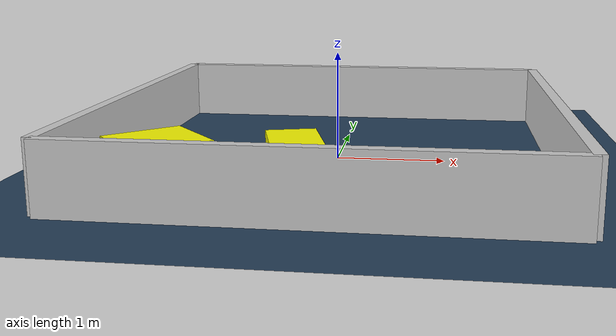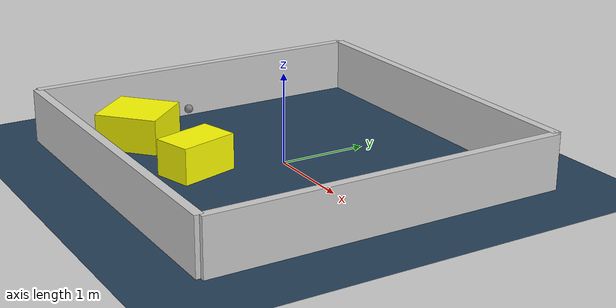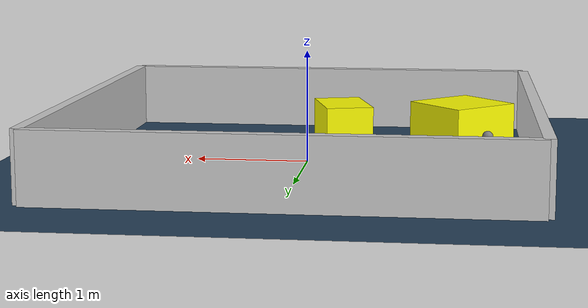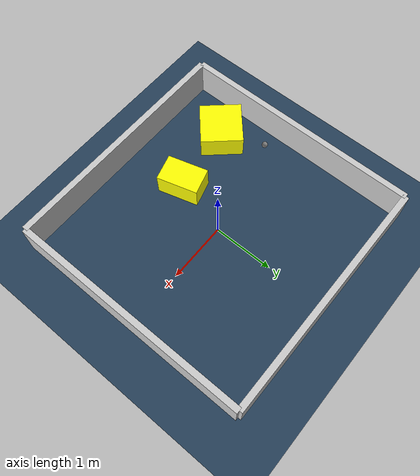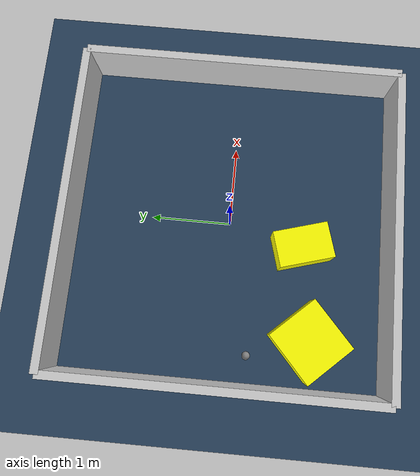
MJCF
<?xml version="1.0" ?>
<mujoco model="generated_environment">
  <option timestep="0.01" integrator="RK4" cone="elliptic"/>
  <default>
    <geom density="1"/>
  </default>
  <asset>
    <texture builtin="gradient" height="3072" rgb1="0.3 0.5 0.7" rgb2="0 0 0" type="skybox" width="512"/>
    <texture builtin="checker" height="300" mark="edge" markrgb="0.8 0.8 0.8" name="groundplane" rgb1="0.2 0.3 0.4" rgb2="0.1 0.2 0.3" type="2d" width="300"/>
    <material name="groundplane" reflectance="0.2" texrepeat="5 5" texture="groundplane" texuniform="true"/>
    <material name="robot" rgba="0.0 1.0 0.0 1"/>
  </asset>
  <worldbody>
    <light dir="0 0 -1" directional="true" pos="0 0 1.5"/>
    <geom condim="4" friction="1.0 0.005 0.001" material="groundplane" name="floor" size="0 0 0.05" type="plane"/>
    <body name="walls">
      <geom name="wall_1" condim="4" pos="-2.0 0.0 0.3" rgba="0.800000011920929 0.800000011920929 0.800000011920929 1.0" size="0.05 2.0 0.3" type="box"/>
      <geom name="wall_2" condim="4" pos="2.0 0.0 0.3" rgba="0.800000011920929 0.800000011920929 0.800000011920929 1.0" size="0.05 2.0 0.3" type="box"/>
      <geom name="wall_3" condim="4" pos="0.0 -2.0 0.3" rgba="0.800000011920929 0.800000011920929 0.800000011920929 1.0" size="2.0 0.05 0.3" type="box"/>
      <geom name="wall_4" condim="4" pos="0.0 2.0 0.3" rgba="0.800000011920929 0.800000011920929 0.800000011920929 1.0" size="2.0 0.05 0.3" type="box"/>
    </body>
    <body name="robot">
      <joint name="joint_x" type="slide" pos="0 0 0" axis="1 0 0"/>
      <joint name="joint_y" type="slide" pos="0 0 0" axis="0 1 0"/>
      <geom name="robot" type="sphere" pos="-1.6139149082087885 -0.3339686299403062 0.2" size="0.05" mass="5." friction="1.0 0.005 0.0001" condim="4"/>
      <site name="sensor_ball"/>
    </body>
    <body name="obstacle_1_movable">
      <geom name="obstacle_1_movable" condim="4" pos="-1.3821307386535302 -1.0750543399216648 0.2" euler="0 0 221.98820945866606" friction="1.0 0.005 0.001" rgba="1 1 0 1" size="0.35853553390326914 0.34547519264866994 0.2" type="box" mass="0.1"/>
      <joint type="free"/>
    </body>
    <body name="obstacle_2_movable">
      <geom name="obstacle_2_movable" condim="4" pos="-0.24480359720778422 -0.9234089614576841 0.2" euler="0 0 105.90997594053853" friction="1.0 0.005 0.001" rgba="1 1 0 1" size="0.3397171378152892 0.22159075116350532 0.2" type="box" mass="0.1"/>
      <joint type="free"/>
    </body>
  </worldbody>
  <actuator>
    <motor name="actuator_x" joint="joint_x" gear="1" ctrlrange="-1 1"/>
    <motor name="actuator_y" joint="joint_y" gear="1" ctrlrange="-1 1"/>
  </actuator>
</mujoco>
